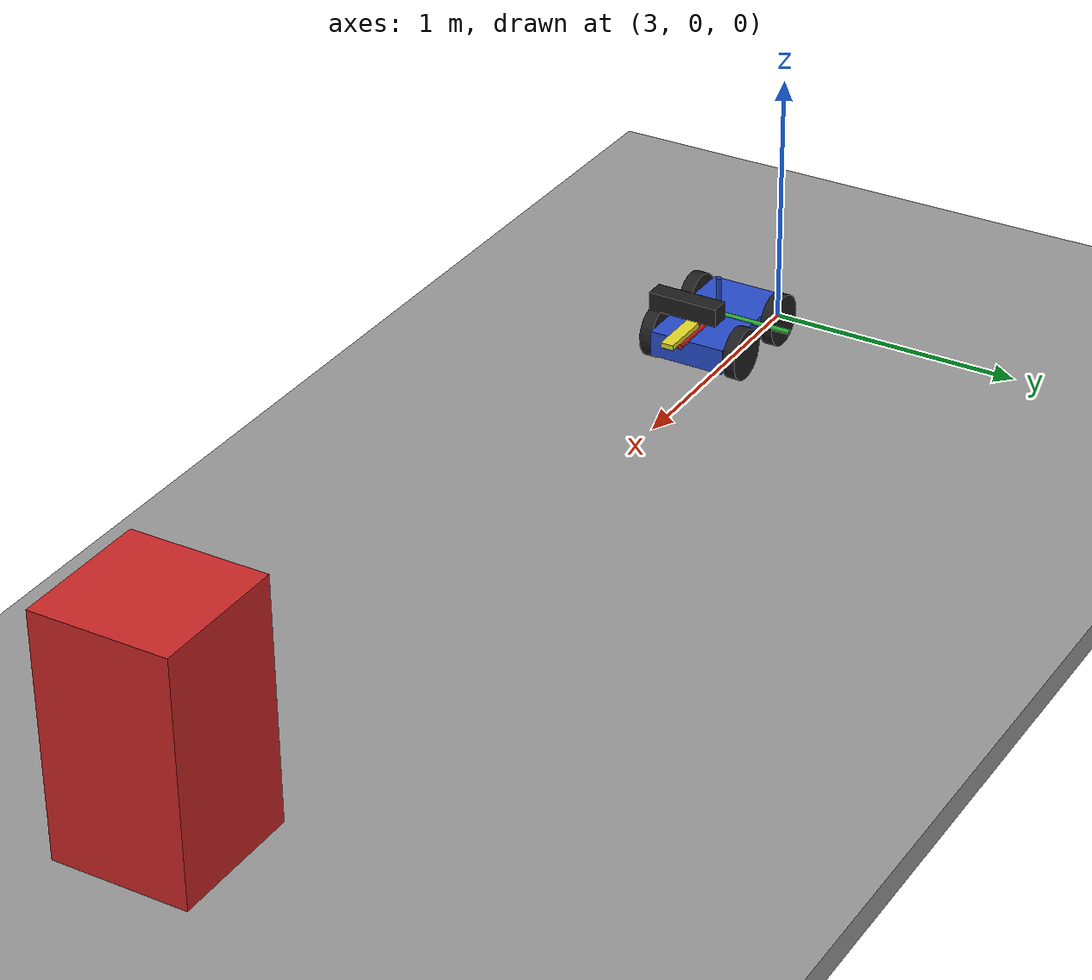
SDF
<?xml version="1.0" ?>
<sdf version="1.4">
  <world name="obstacle_world">
    <!-- 添加地面 -->
    <include>
      <uri>model://ground_plane</uri>
    </include>

    <!-- 添加光照 -->
    <include>
      <uri>model://sun</uri>
    </include>

    <!-- 添加一条直线道路 -->
    <model name="road">
      <static>true</static>
      <link name="link">
        <collision name="collision">
          <geometry>
            <box>
              <size>25.0 6.0 0.1</size>
            </box>
          </geometry>
        </collision>
        <visual name="visual">
          <geometry>
            <box>
              <size>25.0 6.0 0.1</size>
            </box>
          </geometry>
          <material>
            <script>
              <uri>file://media/materials/scripts/gazebo.material</uri>
              <name>Gazebo/Grey</name>
            </script>
          </material>
        </visual>
      </link>
      <pose>2.5 0 0.05 0 0 0</pose>
    </model>

    <!-- 添加简单的机器人模型 -->
    <model name="simple_robot">
      <pose>3.5 0 0.1 0 0 0</pose>
      <static>false</static>

      <!-- 机器人主体 -->
      <link name="base_link">
        <pose>0 0 0.1 0 0 0</pose>
        <!-- 底盘碰撞体 -->
        <collision name="collision">
          <geometry>
            <box>
              <size>0.5 0.3 0.1</size>
            </box>
          </geometry>
        </collision>
        <!-- 底盘视觉模型 -->
        <visual name="visual">
          <geometry>
            <box>
              <size>0.5 0.3 0.1</size>
            </box>
          </geometry>
          <material>
            <script>
              <uri>file://media/materials/scripts/gazebo.material</uri>
              <name>Gazebo/Blue</name>
            </script>
          </material>
        </visual>

        <!-- X轴指示器（红色） -->
        <visual name="x_axis">
          <pose>0.15 0 0.05 0 1.5708 0</pose>
          <geometry>
            <cylinder>
              <radius>0.01</radius>
              <length>0.3</length>
            </cylinder>
          </geometry>
          <material>
            <script>
              <uri>file://media/materials/scripts/gazebo.material</uri>
              <name>Gazebo/Red</name>
            </script>
          </material>
        </visual>

        <!-- Y轴指示器（绿色） -->
        <visual name="y_axis">
          <pose>0 0.15 0.05 1.5708 0 0</pose>
          <geometry>
            <cylinder>
              <radius>0.01</radius>
              <length>0.3</length>
            </cylinder>
          </geometry>
          <material>
            <script>
              <uri>file://media/materials/scripts/gazebo.material</uri>
              <name>Gazebo/Green</name>
            </script>
          </material>
        </visual>

        <!-- Z轴指示器（蓝色） -->
        <visual name="z_axis">
          <pose>0 0 0.05 0 0 0</pose>
          <geometry>
            <cylinder>
              <radius>0.01</radius>
              <length>0.3</length>
            </cylinder>
          </geometry>
          <material>
            <script>
              <uri>file://media/materials/scripts/gazebo.material</uri>
              <name>Gazebo/Blue</name>
            </script>
          </material>
        </visual>

        <!-- 方向箭头（黄色） -->
        <visual name="direction_arrow">
          <pose>0.3 0 0.1 0 0 0</pose>
          <geometry>
            <box>
              <size>0.2 0.05 0.02</size>
            </box>
          </geometry>
          <material>
            <script>
              <uri>file://media/materials/scripts/gazebo.material</uri>
              <name>Gazebo/Yellow</name>
            </script>
          </material>
        </visual>

        <!-- Kinect相机 -->
        <visual name="kinect_visual">
          <pose>0.25 0 0.2 0 0 0</pose>
          <geometry>
            <box>
              <size>0.073 0.276 0.072</size>
            </box>
          </geometry>
          <material>
            <script>
              <uri>file://media/materials/scripts/gazebo.material</uri>
              <name>Gazebo/Black</name>
            </script>
          </material>
        </visual>

        <!-- Kinect传感器 -->
        <sensor type="depth" name="kinect">
          <pose>0.25 0 0.2 0 0 0</pose>
          <update_rate>20</update_rate>
          <camera>
            <horizontal_fov>1.047198</horizontal_fov>
            <image>
              <width>640</width>
              <height>480</height>
              <format>R8G8B8</format>
            </image>
            <clip>
              <near>0.05</near>
              <far>3.0</far>
            </clip>
          </camera>
          <plugin name="kinect_camera_controller" filename="libgazebo_ros_openni_kinect.so">
            <cameraName>camera</cameraName>
            <alwaysOn>true</alwaysOn>
            <updateRate>20</updateRate>
            <imageTopicName>rgb/image_raw</imageTopicName>
            <depthImageTopicName>depth/image_raw</depthImageTopicName>
            <pointCloudTopicName>depth/points</pointCloudTopicName>
            <frameName>camera_link</frameName>
          </plugin>
        </sensor>

        <inertial>
          <mass>5.0</mass>
          <inertia>
            <ixx>0.1</ixx>
            <ixy>0</ixy>
            <ixz>0</ixz>
            <iyy>0.1</iyy>
            <iyz>0</iyz>
            <izz>0.1</izz>
          </inertia>
        </inertial>
      </link>

      <!-- 左前轮 -->
      <link name="front_left_wheel">
        <pose>0.15 0.175 0.1 1.5708 0 0</pose>
        <collision name="collision">
          <geometry>
            <cylinder>
              <radius>0.1</radius>
              <length>0.05</length>
            </cylinder>
          </geometry>
        </collision>
        <visual name="visual">
          <geometry>
            <cylinder>
              <radius>0.1</radius>
              <length>0.05</length>
            </cylinder>
          </geometry>
          <material>
            <script>
              <uri>file://media/materials/scripts/gazebo.material</uri>
              <name>Gazebo/Black</name>
            </script>
          </material>
        </visual>
        <inertial>
          <mass>1.0</mass>
          <inertia>
            <ixx>0.01</ixx>
            <ixy>0</ixy>
            <ixz>0</ixz>
            <iyy>0.01</iyy>
            <iyz>0</iyz>
            <izz>0.01</izz>
          </inertia>
        </inertial>
      </link>

      <!-- 右前轮 -->
      <link name="front_right_wheel">
        <pose>0.15 -0.175 0.1 1.5708 0 0</pose>
        <collision name="collision">
          <geometry>
            <cylinder>
              <radius>0.1</radius>
              <length>0.05</length>
            </cylinder>
          </geometry>
        </collision>
        <visual name="visual">
          <geometry>
            <cylinder>
              <radius>0.1</radius>
              <length>0.05</length>
            </cylinder>
          </geometry>
          <material>
            <script>
              <uri>file://media/materials/scripts/gazebo.material</uri>
              <name>Gazebo/Black</name>
            </script>
          </material>
        </visual>
        <inertial>
          <mass>1.0</mass>
          <inertia>
            <ixx>0.01</ixx>
            <ixy>0</ixy>
            <ixz>0</ixz>
            <iyy>0.01</iyy>
            <iyz>0</iyz>
            <izz>0.01</izz>
          </inertia>
        </inertial>
      </link>

      <!-- 左后轮 -->
      <link name="rear_left_wheel">
        <pose>-0.15 0.175 0.1 1.5708 0 0</pose>
        <collision name="collision">
          <geometry>
            <cylinder>
              <radius>0.1</radius>
              <length>0.05</length>
            </cylinder>
          </geometry>
        </collision>
        <visual name="visual">
          <geometry>
            <cylinder>
              <radius>0.1</radius>
              <length>0.05</length>
            </cylinder>
          </geometry>
          <material>
            <script>
              <uri>file://media/materials/scripts/gazebo.material</uri>
              <name>Gazebo/Black</name>
            </script>
          </material>
        </visual>
        <inertial>
          <mass>1.0</mass>
          <inertia>
            <ixx>0.01</ixx>
            <ixy>0</ixy>
            <ixz>0</ixz>
            <iyy>0.01</iyy>
            <iyz>0</iyz>
            <izz>0.01</izz>
          </inertia>
        </inertial>
      </link>

      <!-- 右后轮 -->
      <link name="rear_right_wheel">
        <pose>-0.15 -0.175 0.1 1.5708 0 0</pose>
        <collision name="collision">
          <geometry>
            <cylinder>
              <radius>0.1</radius>
              <length>0.05</length>
            </cylinder>
          </geometry>
        </collision>
        <visual name="visual">
          <geometry>
            <cylinder>
              <radius>0.1</radius>
              <length>0.05</length>
            </cylinder>
          </geometry>
          <material>
            <script>
              <uri>file://media/materials/scripts/gazebo.material</uri>
              <name>Gazebo/Black</name>
            </script>
          </material>
        </visual>
        <inertial>
          <mass>1.0</mass>
          <inertia>
            <ixx>0.01</ixx>
            <ixy>0</ixy>
            <ixz>0</ixz>
            <iyy>0.01</iyy>
            <iyz>0</iyz>
            <izz>0.01</izz>
          </inertia>
        </inertial>
      </link>

      <!-- 左前轮关节 -->
      <joint type="revolute" name="front_left_wheel_joint">
        <parent>base_link</parent>
        <child>front_left_wheel</child>
        <axis>
          <xyz>0 1 0</xyz>
          <dynamics>
            <damping>0.1</damping>
            <friction>0.1</friction>
          </dynamics>
        </axis>
      </joint>

      <!-- 右前轮关节 -->
      <joint type="revolute" name="front_right_wheel_joint">
        <parent>base_link</parent>
        <child>front_right_wheel</child>
        <axis>
          <xyz>0 1 0</xyz>
          <dynamics>
            <damping>0.1</damping>
            <friction>0.1</friction>
          </dynamics>
        </axis>
      </joint>

      <!-- 左后轮关节 -->
      <joint type="revolute" name="rear_left_wheel_joint">
        <parent>base_link</parent>
        <child>rear_left_wheel</child>
        <axis>
          <xyz>0 1 0</xyz>
          <dynamics>
            <damping>0.1</damping>
            <friction>0.1</friction>
          </dynamics>
        </axis>
      </joint>

      <!-- 右后轮关节 -->
      <joint type="revolute" name="rear_right_wheel_joint">
        <parent>base_link</parent>
        <child>rear_right_wheel</child>
        <axis>
          <xyz>0 1 0</xyz>
          <dynamics>
            <damping>0.1</damping>
            <friction>0.1</friction>
          </dynamics>
        </axis>
      </joint>

      <!-- 差速驱动插件 -->
      <plugin name="differential_drive_controller" filename="libgazebo_ros_diff_drive.so">
        <robotNamespace>/</robotNamespace>
        <leftJoint>front_left_wheel_joint</leftJoint>
        <leftJoint>rear_left_wheel_joint</leftJoint>
        <rightJoint>front_right_wheel_joint</rightJoint>
        <rightJoint>rear_right_wheel_joint</rightJoint>
        <wheelSeparation>0.5</wheelSeparation>
        <wheelDiameter>0.2</wheelDiameter>
        <torque>100</torque>
        <commandTopic>cmd_vel</commandTopic>
        <odometryTopic>odom</odometryTopic>
        <odometryFrame>odom</odometryFrame>
        <robotBaseFrame>base_link</robotBaseFrame>
        <publishWheelTF>true</publishWheelTF>
        <publishOdomTF>true</publishOdomTF>
        <publishWheelJointState>true</publishWheelJointState>
        <wheelAcceleration>5</wheelAcceleration>
        <wheelTorque>100</wheelTorque>
        <odometrySource>world</odometrySource>
        <updateRate>50</updateRate>
        <legacyMode>false</legacyMode>
        <rosDebugLevel>Debug</rosDebugLevel>
      </plugin>
    </model>

    <!-- 添加障碍物 -->
    <model name="obstacle1">
      <static>true</static>
      <link name="link">
        <collision name="collision">
          <geometry>
            <box>
              <size>0.5 0.5 1.0</size>
            </box>
          </geometry>
        </collision>
        <visual name="visual">
          <geometry>
            <box>
              <size>0.5 0.5 1.0</size>
            </box>
          </geometry>
          <material>
            <script>
              <uri>file://media/materials/scripts/gazebo.material</uri>
              <name>Gazebo/Red</name>
            </script>
          </material>
        </visual>
      </link>
      <pose>7.0 0 0.5 0 0 0</pose>
    </model>

    <!-- 添加环境光 -->
    <light type="directional" name="my_light">
      <pose>0 0 10 0 0 0</pose>
      <diffuse>0.8 0.8 0.8 1</diffuse>
      <specular>0.2 0.2 0.2 1</specular>
      <direction>-0.5 0.1 -0.9</direction>
      <cast_shadows>true</cast_shadows>
    </light>

    <!-- 物理引擎设置 -->
    <physics type="ode">
      <max_step_size>0.001</max_step_size>
      <real_time_factor>1</real_time_factor>
      <real_time_update_rate>1000</real_time_update_rate>
      <gravity>0 0 -9.8</gravity>
    </physics>
  </world>
</sdf>
